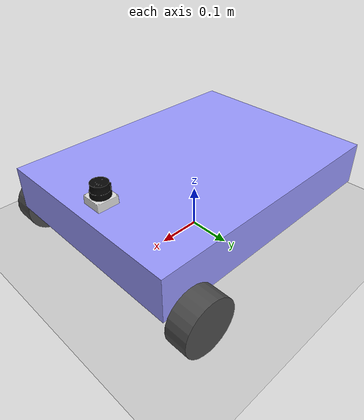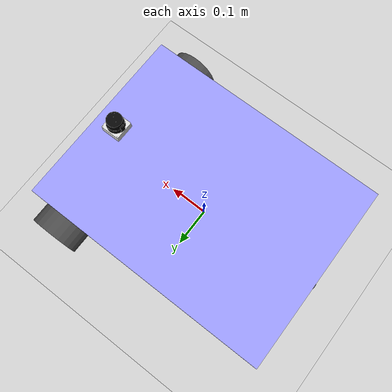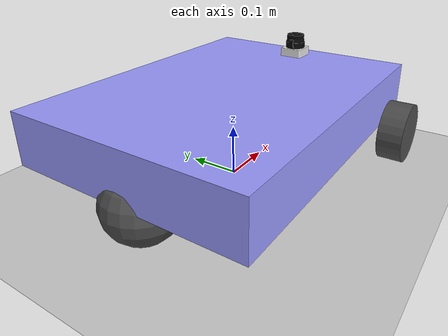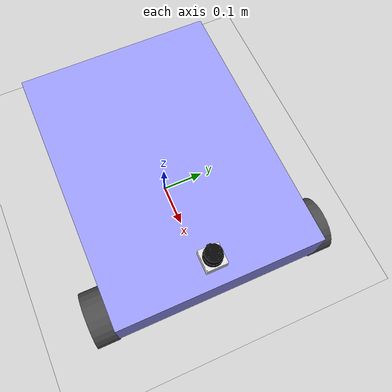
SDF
<sdf version="1.4">
 <world name="default">
  <model name="ground_plane">
   <static>1</static>
   <link name="link">
    <collision name="collision">
     <geometry><plane><normal>0 0 1</normal><size>100 100</size></plane></geometry>
     <surface><friction><ode><mu>100</mu><mu2>50</mu2></ode></friction></surface>
    </collision>
    <visual name="visual">
     <cast_shadows>0</cast_shadows>
     <geometry><plane><normal>0 0 1</normal><size>100 100</size></plane></geometry>
     <material>
      <script><uri>file://media/materials/scripts/gazebo.material</uri><name>Gazebo/Grey</name></script>
     </material>
    </visual>
    <velocity_decay><linear>0</linear><angular>0</angular></velocity_decay>
   </link>
  </model>
  <light name="sun" type="directional">
   <pose>0 0 10 0 -0 0</pose>
   <diffuse>0.8 0.8 0.8 1</diffuse>
   <specular>0.2 0.2 0.2 1</specular>
   <attenuation>
    <range>1000</range>
    <constant>0.9</constant>
    <linear>0.01</linear>
    <quadratic>0.001</quadratic>
   </attenuation>
   <direction>-0.5 0.1 -0.9</direction>
  </light>
  <physics type="ode">
   <max_step_size>0.001</max_step_size>
   <real_time_factor>1</real_time_factor>
   <real_time_update_rate>1000</real_time_update_rate>
   <gravity>0 0 -9.8</gravity>
  </physics>
  <scene><ambient>0.4 0.4 0.4 1</ambient><background>0.7 0.7 0.7 1</background><shadows>1</shadows></scene>
  <model name="collectorbot">
   <static>0</static>
   <link name="base_link">
    <pose>0 0 0.138 0 -0 0</pose>
    <inertial>
     <mass>2</mass>
     <inertia><ixx>0.25</ixx><ixy>0</ixy><ixz>0</ixz><iyy>0.25</iyy><iyz>0</iyz><izz>0.25</izz></inertia>
    </inertial>
    <collision name="collision"><geometry><box><size>0.6096 0.4572 0.1</size></box></geometry></collision>
    <visual name="visual">
     <geometry><box><size>0.6096 0.4572 0.1</size></box></geometry>
     <material>
      <ambient>0.6 0.6 1 1</ambient>
      <diffuse>0.6 0.6 1 1</diffuse>
      <specular>0.1 0.1 0.1 1</specular>
      <emissive>0 0 0 0</emissive>
     </material>
    </visual>
    <collision name="caster_collision">
     <pose>-0.254 0 -0.06905 0 -0 0</pose>
     <geometry><sphere><radius>0.06905</radius></sphere></geometry>
     <surface><friction><ode><mu>0</mu><mu2>0</mu2><slip1>1</slip1><slip2>1</slip2></ode></friction></surface>
    </collision>
    <visual name="caster_visual">
     <pose>-0.254 0 -0.06905 0 -0 0</pose>
     <geometry><sphere><radius>0.06905</radius></sphere></geometry>
     <material>
      <ambient>0.3 0.3 0.3 1</ambient>
      <diffuse>0.3 0.3 0.3 1</diffuse>
      <specular>0.1 0.1 0.1 1</specular>
      <emissive>0 0 0 0</emissive>
     </material>
    </visual>
    <velocity_decay><linear>0</linear><angular>0</angular></velocity_decay>
   </link>
   <link name="left_wheel_link">
    <pose>0.2413 -0.2536 0.0619125 1.5708 -0 0</pose>
    <inertial>
     <mass>0.143</mass>
     <inertia>
      <ixx>0.00041955</ixx>
      <ixy>0</ixy>
      <ixz>0</ixz>
      <iyy>0.00027407</iyy>
      <iyz>0</iyz>
      <izz>0.00041955</izz>
     </inertia>
    </inertial>
    <collision name="collision">
     <geometry><cylinder><length>0.05</length><radius>0.0619125</radius></cylinder></geometry>
    </collision>
    <visual name="visual">
     <geometry><cylinder><length>0.05</length><radius>0.0619125</radius></cylinder></geometry>
     <material>
      <ambient>0.3 0.3 0.3 1</ambient>
      <diffuse>0.3 0.3 0.3 1</diffuse>
      <specular>0.1 0.1 0.1 1</specular>
      <emissive>0 0 0 0</emissive>
     </material>
    </visual>
    <velocity_decay><linear>0</linear><angular>0</angular></velocity_decay>
   </link>
   <link name="right_wheel_link">
    <pose>0.2413 0.2536 0.0619125 1.5708 -0 0</pose>
    <inertial>
     <mass>0.143</mass>
     <inertia>
      <ixx>0.00041955</ixx>
      <ixy>0</ixy>
      <ixz>0</ixz>
      <iyy>0.00027407</iyy>
      <iyz>0</iyz>
      <izz>0.00041955</izz>
     </inertia>
    </inertial>
    <collision name="collision">
     <geometry><cylinder><length>0.05</length><radius>0.0619125</radius></cylinder></geometry>
    </collision>
    <visual name="visual">
     <geometry><cylinder><length>0.05</length><radius>0.0619125</radius></cylinder></geometry>
     <material>
      <ambient>0.3 0.3 0.3 1</ambient>
      <diffuse>0.3 0.3 0.3 1</diffuse>
      <specular>0.1 0.1 0.1 1</specular>
      <emissive>0 0 0 0</emissive>
     </material>
    </visual>
    <velocity_decay><linear>0</linear><angular>0</angular></velocity_decay>
   </link>
   <joint name="base_left_wheel" type="revolute">
    <parent>base_link</parent>
    <child>left_wheel_link</child>
    <axis><xyz>0 1 0</xyz><limit><lower>-1e+16</lower><upper>1e+16</upper></limit></axis>
   </joint>
   <joint name="base_right_wheel" type="revolute">
    <parent>base_link</parent>
    <child>right_wheel_link</child>
    <axis><xyz>0 1 0</xyz><limit><lower>-1e+16</lower><upper>1e+16</upper></limit></axis>
   </joint>
   <link name="hokuyo::link">
    <inertial>
     <mass>0.1</mass>
     <inertia><ixx>1</ixx><ixy>0</ixy><ixz>0</ixz><iyy>1</iyy><iyz>0</iyz><izz>1</izz></inertia>
    </inertial>
    <visual name="visual"><geometry><mesh><uri>model://hokuyo/meshes/hokuyo.dae</uri></mesh></geometry></visual>
    <collision name="collision-base">
     <pose>0 0 -0.0145 0 -0 0</pose>
     <geometry><box><size>0.05 0.05 0.041</size></box></geometry>
    </collision>
    <collision name="collision-top">
     <pose>0 0 0.0205 0 -0 0</pose>
     <geometry><cylinder><radius>0.021</radius><length>0.029</length></cylinder></geometry>
    </collision>
    <sensor name="laser" type="ray">
     <pose>0.01 0 0.0175 0 -0 0</pose>
     <ray>
      <scan>
       <horizontal>
        <samples>640</samples>
        <resolution>1</resolution>
        <min_angle>-2.26889</min_angle>
        <max_angle>2.2689</max_angle>
       </horizontal>
      </scan>
      <range><min>0.08</min><max>10</max><resolution>0.01</resolution></range>
     </ray>
     <plugin name="laser" filename="libgazebo_ros_laser.so">
      <frameName>hokuyo_frame</frameName>
      <topicName>/scan</topicName>
     </plugin>
     <always_on>1</always_on>
     <update_rate>30</update_rate>
     <visualize>1</visualize>
    </sensor>
    <velocity_decay><linear>0</linear><angular>0</angular></velocity_decay>
    <pose>0.25 0 0.2 0 -0 0</pose>
   </link>
   <joint name="hokuyo_joint" type="revolute">
    <child>hokuyo::link</child>
    <parent>base_link</parent>
    <axis><xyz>0 0 1</xyz><limit><upper>0</upper><lower>0</lower></limit></axis>
   </joint>
   <plugin name="differential_drive_controller" filename="libgazebo_ros_diff_drive.so">
    <alwaysOn>true</alwaysOn>
    <updateRate>20</updateRate>
    <leftJoint>base_left_wheel</leftJoint>
    <rightJoint>base_right_wheel</rightJoint>
    <wheelSeparation>0.5072</wheelSeparation>
    <wheelDiameter>0.123825</wheelDiameter>
    <torque>20</torque>
    <commandTopic>cmd_vel</commandTopic>
    <odometryTopic>odom</odometryTopic>
    <odometryFrame>odom</odometryFrame>
    <robotBaseFrame>base_link</robotBaseFrame>
    <robotNamespace>/</robotNamespace>
   </plugin>
   <pose>0.001021 -0.000648 4.8e-05 1e-06 0.000204 -0.001435</pose>
  </model>
 </world>
</sdf>
